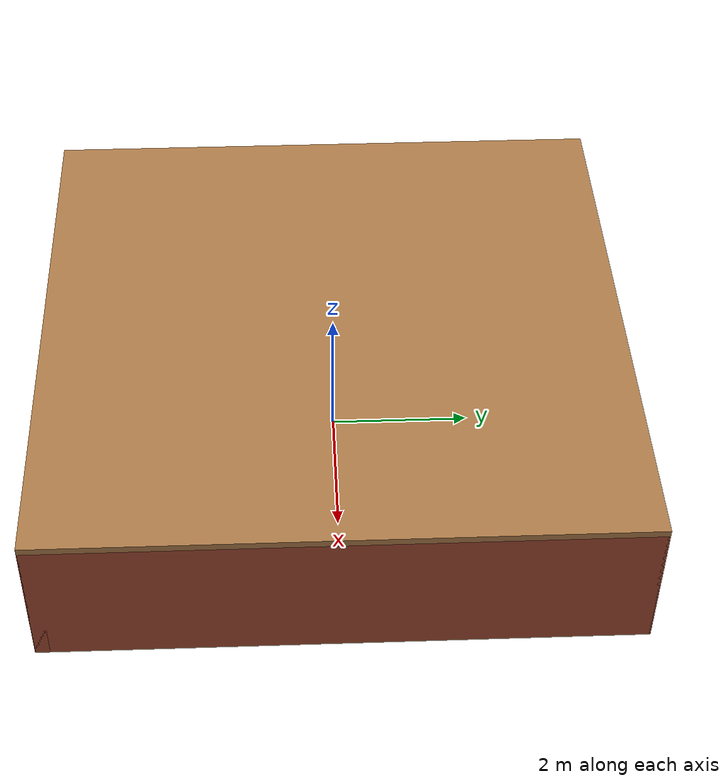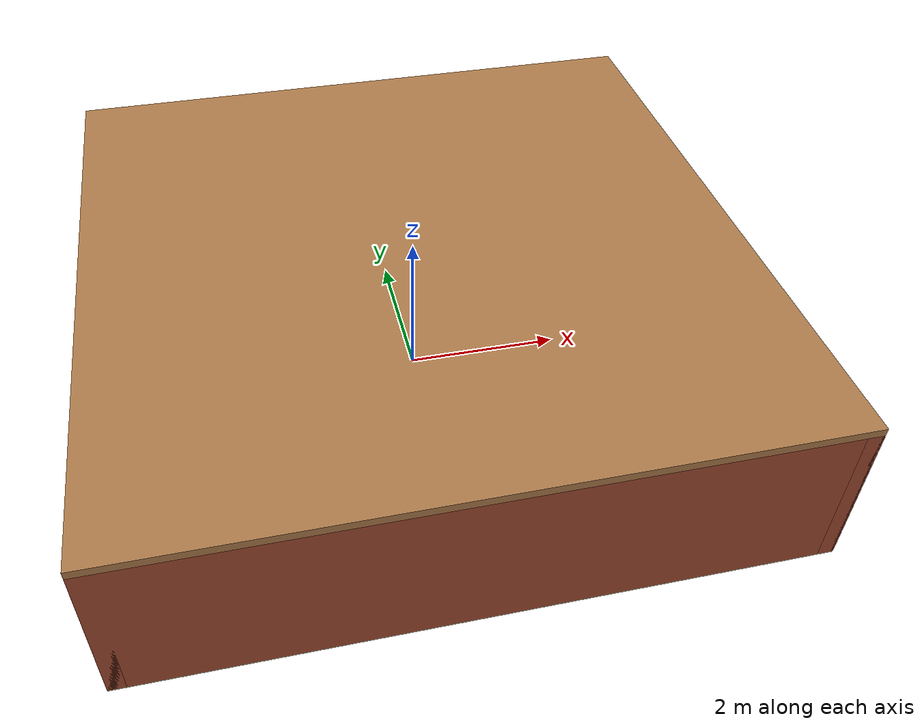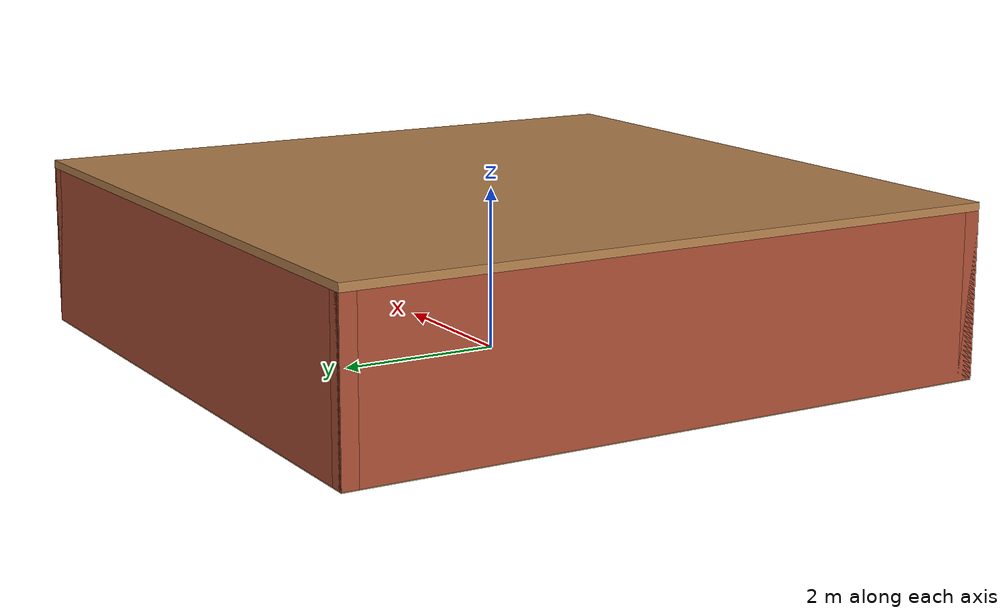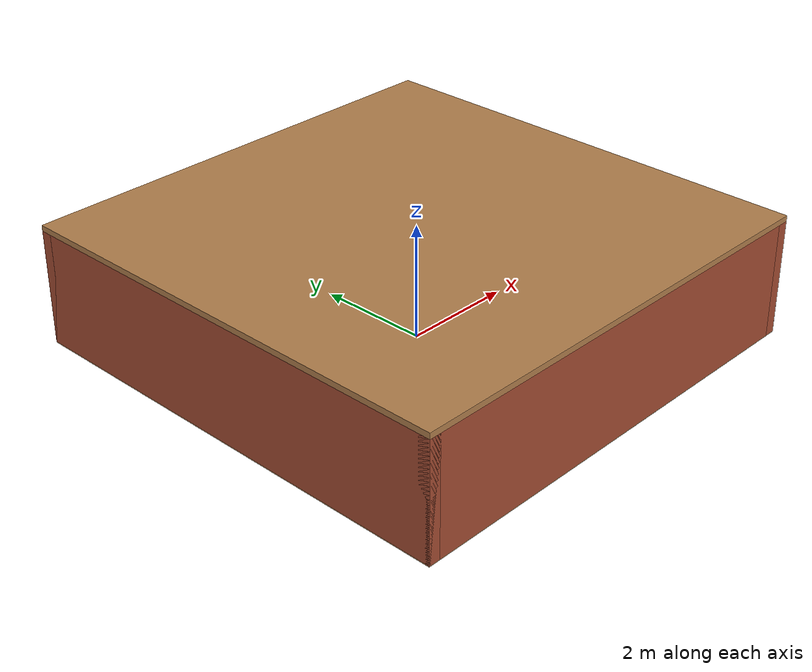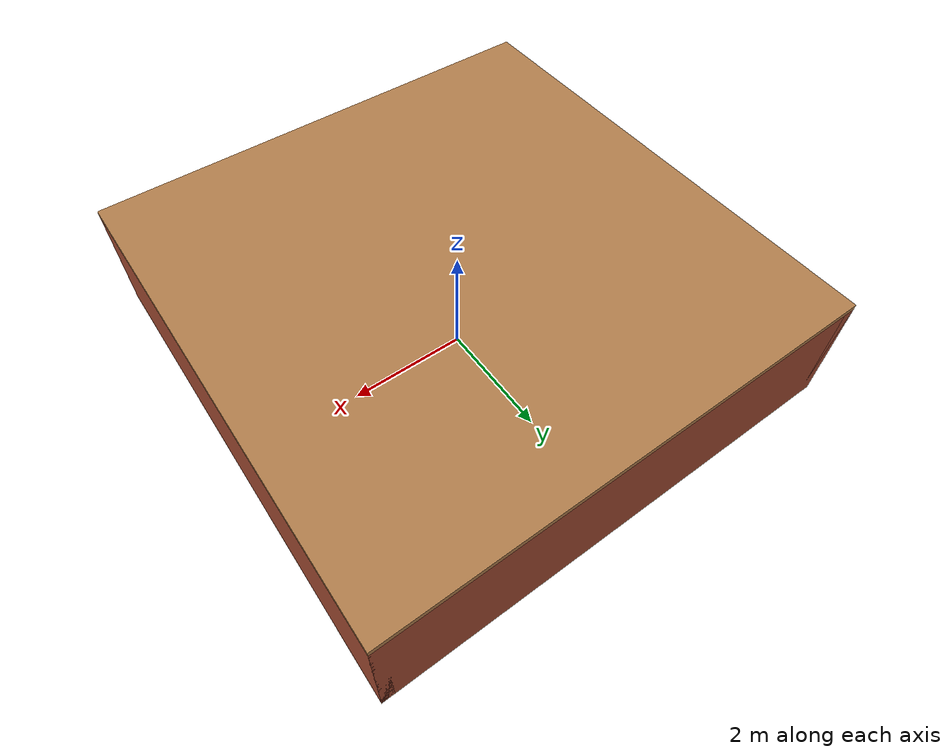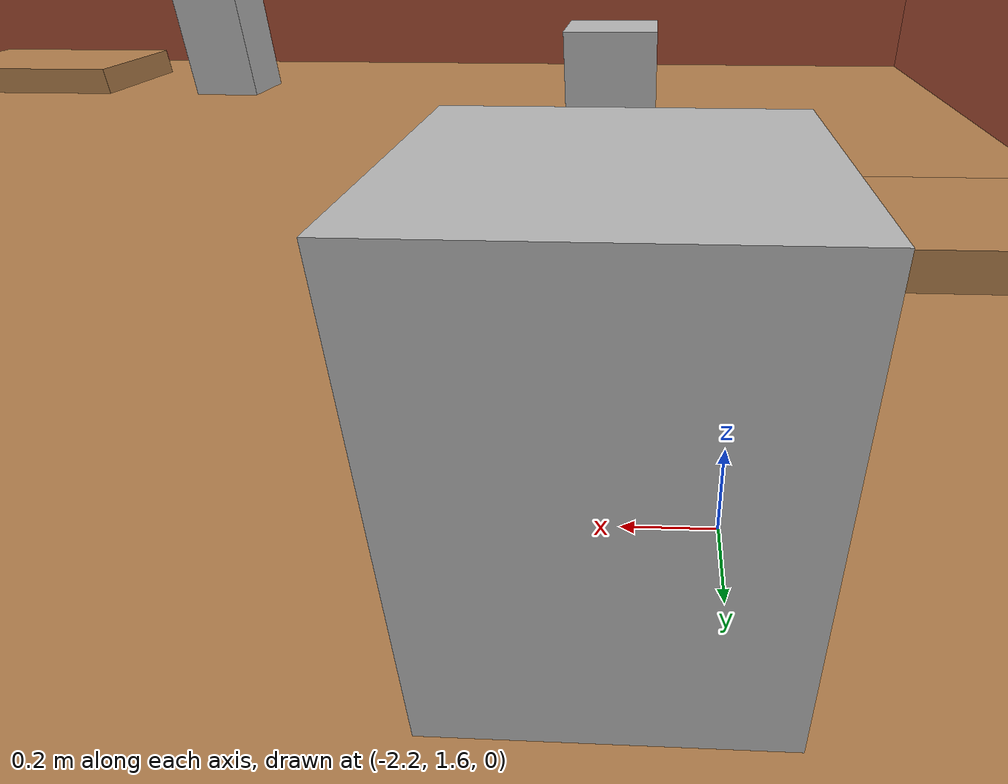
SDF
<sdf version="1.6">
 <world name="warehouse">
  <gravity>0 0 -9.8</gravity>
  <scene><ambient>0.6 0.6 0.6 1</ambient><background>0.7 0.7 0.7 1</background><shadows>false</shadows></scene>
  <light name="sun" type="directional">
   <cast_shadows>false</cast_shadows>
   <pose>0 0 10 0 0 0</pose>
   <diffuse>0.9 0.9 0.9 1</diffuse>
   <specular>0.1 0.1 0.1 1</specular>
   <direction>-0.3 0.2 -1</direction>
  </light>
  <model name="floor">
   <static>true</static>
   <link name="link">
    <collision name="c">
     <geometry><plane><normal>0 0 1</normal><size>8.2 8.2</size></plane></geometry>
     <surface><friction><ode><mu>100</mu><mu2>50</mu2></ode></friction></surface>
    </collision>
    <visual name="v">
     <geometry><plane><normal>0 0 1</normal><size>8.2 8.2</size></plane></geometry>
     <material>
      <script><uri>file://media/materials/scripts/gazebo.material</uri><name>Gazebo/Wood</name></script>
     </material>
    </visual>
   </link>
  </model>
  <model name="wall_n">
   <static>true</static>
   <pose>0 4.0 1.0 0 0 0</pose>
   <link name="link">
    <collision name="c"><geometry><box><size>8.2 0.2 2.0</size></box></geometry></collision>
    <visual name="v">
     <geometry><box><size>8.2 0.2 2.0</size></box></geometry>
     <material>
      <script><uri>file://media/materials/scripts/gazebo.material</uri><name>Gazebo/Bricks</name></script>
     </material>
    </visual>
   </link>
  </model>
  <model name="wall_s">
   <static>true</static>
   <pose>0 -4.0 1.0 0 0 0</pose>
   <link name="link">
    <collision name="c"><geometry><box><size>8.2 0.2 2.0</size></box></geometry></collision>
    <visual name="v">
     <geometry><box><size>8.2 0.2 2.0</size></box></geometry>
     <material>
      <script><uri>file://media/materials/scripts/gazebo.material</uri><name>Gazebo/Bricks</name></script>
     </material>
    </visual>
   </link>
  </model>
  <model name="wall_e">
   <static>true</static>
   <pose>4.0 0 1.0 0 0 0</pose>
   <link name="link">
    <collision name="c"><geometry><box><size>0.2 8.2 2.0</size></box></geometry></collision>
    <visual name="v">
     <geometry><box><size>0.2 8.2 2.0</size></box></geometry>
     <material>
      <script><uri>file://media/materials/scripts/gazebo.material</uri><name>Gazebo/Bricks</name></script>
     </material>
    </visual>
   </link>
  </model>
  <model name="wall_w">
   <static>true</static>
   <pose>-4.0 0 1.0 0 0 0</pose>
   <link name="link">
    <collision name="c"><geometry><box><size>0.2 8.2 2.0</size></box></geometry></collision>
    <visual name="v">
     <geometry><box><size>0.2 8.2 2.0</size></box></geometry>
     <material>
      <script><uri>file://media/materials/scripts/gazebo.material</uri><name>Gazebo/Bricks</name></script>
     </material>
    </visual>
   </link>
  </model>
  <model name="ceiling">
   <static>true</static>
   <pose>0 0 2.05 0 0 0</pose>
   <link name="link">
    <visual name="v">
     <geometry><box><size>8.2 8.2 0.1</size></box></geometry>
     <material>
      <script><uri>file://media/materials/scripts/gazebo.material</uri><name>Gazebo/WoodPallet</name></script>
     </material>
    </visual>
   </link>
  </model>
  <model name="shelf_1">
   <static>true</static>
   <pose>3.0 1.6 0.8 0 0 0</pose>
   <link name="link">
    <collision name="c"><geometry><box><size>0.5 1.6 1.6</size></box></geometry></collision>
    <visual name="v">
     <geometry><box><size>0.5 1.6 1.6</size></box></geometry>
     <material>
      <script><uri>file://media/materials/scripts/gazebo.material</uri><name>Gazebo/WoodPallet</name></script>
     </material>
    </visual>
   </link>
  </model>
  <model name="shelf_2">
   <static>true</static>
   <pose>3.0 -1.6 0.8 0 0 0</pose>
   <link name="link">
    <collision name="c"><geometry><box><size>0.5 1.6 1.6</size></box></geometry></collision>
    <visual name="v">
     <geometry><box><size>0.5 1.6 1.6</size></box></geometry>
     <material>
      <script><uri>file://media/materials/scripts/gazebo.material</uri><name>Gazebo/WoodPallet</name></script>
     </material>
    </visual>
   </link>
  </model>
  <model name="shelf_3">
   <static>true</static>
   <pose>-1.5 3.4 0.8 0 0 0</pose>
   <link name="link">
    <collision name="c"><geometry><box><size>1.6 0.5 1.6</size></box></geometry></collision>
    <visual name="v">
     <geometry><box><size>1.6 0.5 1.6</size></box></geometry>
     <material>
      <script><uri>file://media/materials/scripts/gazebo.material</uri><name>Gazebo/WoodPallet</name></script>
     </material>
    </visual>
   </link>
  </model>
  <model name="box_1">
   <static>true</static>
   <pose>1.8 0.0 0.25 0 0 0</pose>
   <link name="link">
    <collision name="c"><geometry><box><size>0.5 0.5 0.5</size></box></geometry></collision>
    <visual name="v">
     <geometry><box><size>0.5 0.5 0.5</size></box></geometry>
     <material>
      <script><uri>file://media/materials/scripts/gazebo.material</uri><name>Gazebo/CardboardBox</name></script>
     </material>
    </visual>
   </link>
  </model>
  <model name="box_2">
   <static>true</static>
   <pose>-2.0 1.8 0.4 0 0 0</pose>
   <link name="link">
    <collision name="c"><geometry><box><size>0.6 0.6 0.8</size></box></geometry></collision>
    <visual name="v">
     <geometry><box><size>0.6 0.6 0.8</size></box></geometry>
     <material>
      <script><uri>file://media/materials/scripts/gazebo.material</uri><name>Gazebo/CardboardBox</name></script>
     </material>
    </visual>
   </link>
  </model>
  <model name="box_3">
   <static>true</static>
   <pose>-1.8 -2.0 0.25 0 0 0</pose>
   <link name="link">
    <collision name="c"><geometry><box><size>0.5 0.5 0.5</size></box></geometry></collision>
    <visual name="v">
     <geometry><box><size>0.5 0.5 0.5</size></box></geometry>
     <material>
      <script><uri>file://media/materials/scripts/gazebo.material</uri><name>Gazebo/CardboardBox</name></script>
     </material>
    </visual>
   </link>
  </model>
  <model name="box_4">
   <static>true</static>
   <pose>0.0 2.6 0.3 0 0 0</pose>
   <link name="link">
    <collision name="c"><geometry><box><size>0.8 0.4 0.6</size></box></geometry></collision>
    <visual name="v">
     <geometry><box><size>0.8 0.4 0.6</size></box></geometry>
     <material>
      <script><uri>file://media/materials/scripts/gazebo.material</uri><name>Gazebo/CardboardBox</name></script>
     </material>
    </visual>
   </link>
  </model>
  <model name="box_5">
   <static>true</static>
   <pose>0.8 -2.8 0.5 0 0 0</pose>
   <link name="link">
    <collision name="c"><geometry><box><size>0.4 0.4 1.0</size></box></geometry></collision>
    <visual name="v">
     <geometry><box><size>0.4 0.4 1.0</size></box></geometry>
     <material>
      <script><uri>file://media/materials/scripts/gazebo.material</uri><name>Gazebo/CardboardBox</name></script>
     </material>
    </visual>
   </link>
  </model>
  <model name="pallet_1">
   <static>true</static>
   <pose>-3.0 0.0 0.075 0 0 0</pose>
   <link name="link">
    <collision name="c"><geometry><box><size>1.2 0.8 0.15</size></box></geometry></collision>
    <visual name="v">
     <geometry><box><size>1.2 0.8 0.15</size></box></geometry>
     <material>
      <script><uri>file://media/materials/scripts/gazebo.material</uri><name>Gazebo/WoodPallet</name></script>
     </material>
    </visual>
   </link>
  </model>
  <model name="pallet_2">
   <static>true</static>
   <pose>2.2 -3.0 0.075 0 0 0</pose>
   <link name="link">
    <collision name="c"><geometry><box><size>1.2 0.8 0.15</size></box></geometry></collision>
    <visual name="v">
     <geometry><box><size>1.2 0.8 0.15</size></box></geometry>
     <material>
      <script><uri>file://media/materials/scripts/gazebo.material</uri><name>Gazebo/WoodPallet</name></script>
     </material>
    </visual>
   </link>
  </model>
  <model name="worker_body">
   <pose>0 -1.3 0 0 0 0</pose>
   <link name="body">
    <gravity>false</gravity>
    <inertial>
     <mass>60</mass>
     <inertia><ixx>10</ixx><iyy>10</iyy><izz>5</izz><ixy>0</ixy><ixz>0</ixz><iyz>0</iyz></inertia>
    </inertial>
    <collision name="c">
     <pose>0 0 0.95 0 0 0</pose>
     <geometry><cylinder><radius>0.25</radius><length>1.8</length></cylinder></geometry>
    </collision>
   </link>
   <plugin name="worker_drive" filename="libgazebo_ros_planar_move.so">
    <ros><namespace>/worker</namespace></ros>
    <command_topic>cmd_vel</command_topic>
    <odometry_topic>odom</odometry_topic>
    <odometry_frame>worker_odom</odometry_frame>
    <odometry_rate>20.0</odometry_rate>
    <robot_base_frame>worker_base</robot_base_frame>
    <publish_odom>false</publish_odom>
    <publish_odom_tf>false</publish_odom_tf>
   </plugin>
   <plugin name="worker_truth" filename="libgazebo_ros_p3d.so">
    <ros><namespace>/worker</namespace><remapping>odom:=ground_truth</remapping></ros>
    <frame_name>world</frame_name>
    <body_name>body</body_name>
    <update_rate>50</update_rate>
    <gaussian_noise>0.0</gaussian_noise>
   </plugin>
  </model>
 </world>
</sdf>
